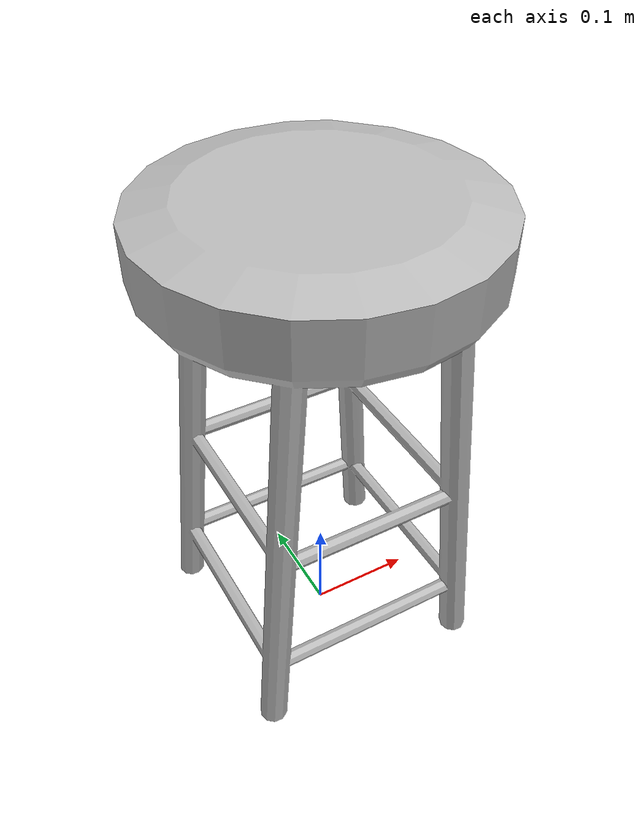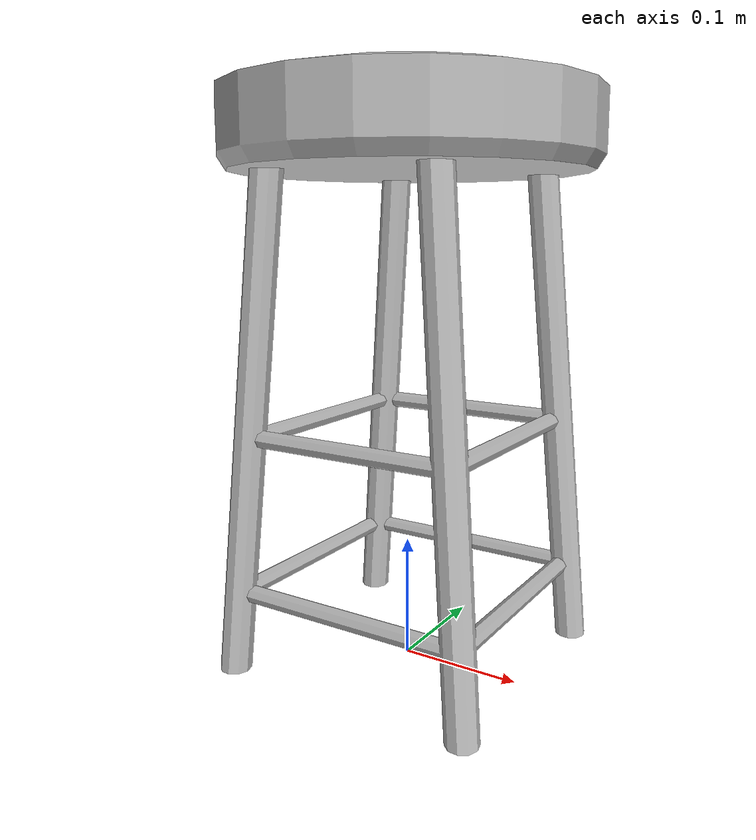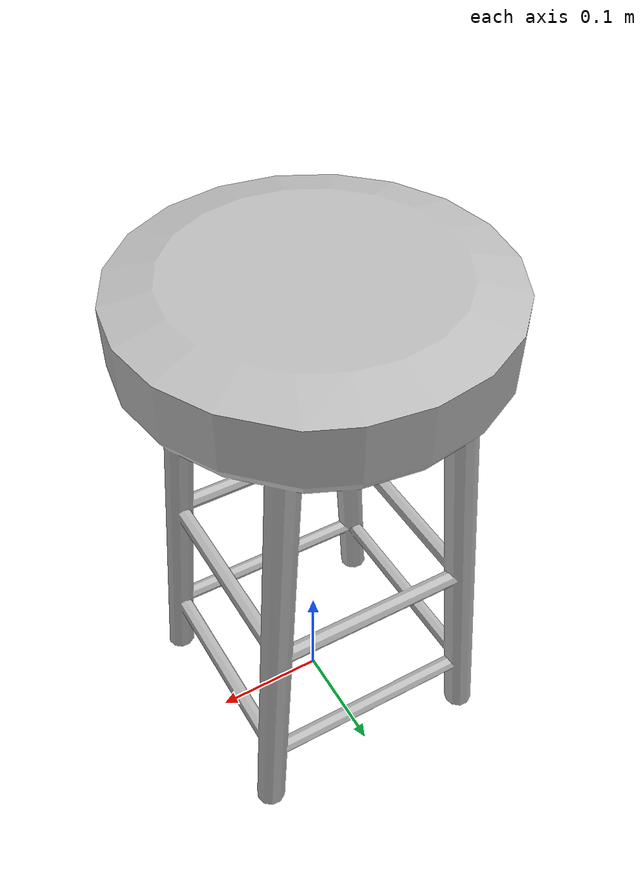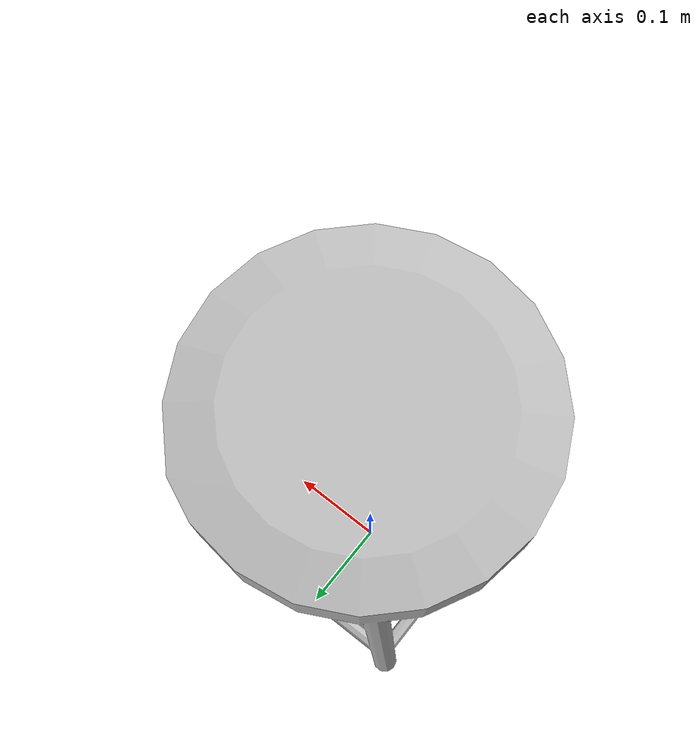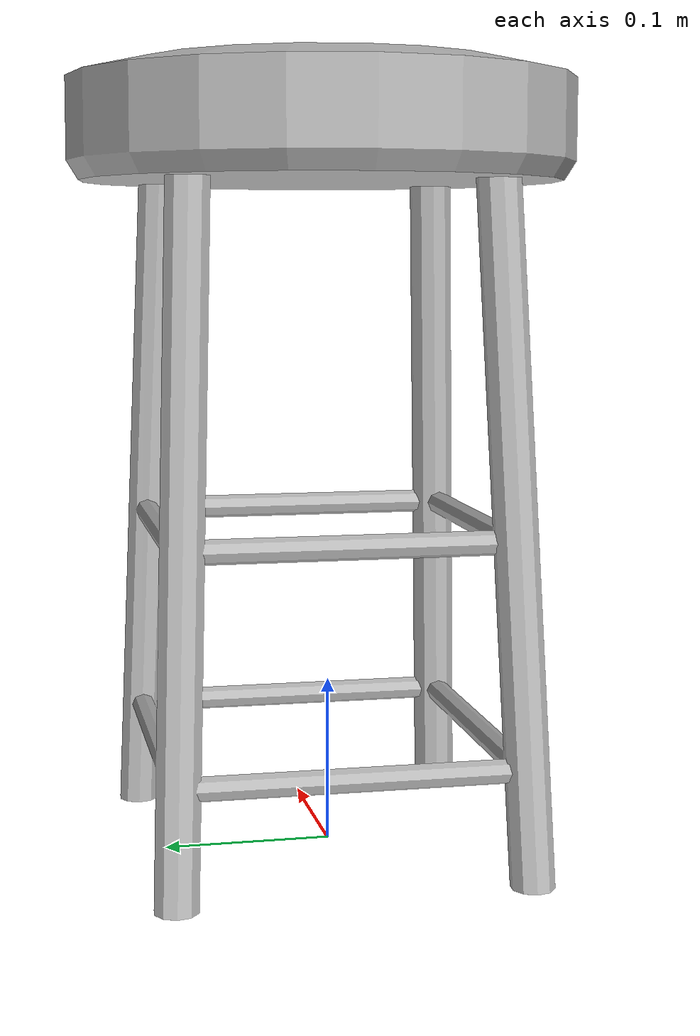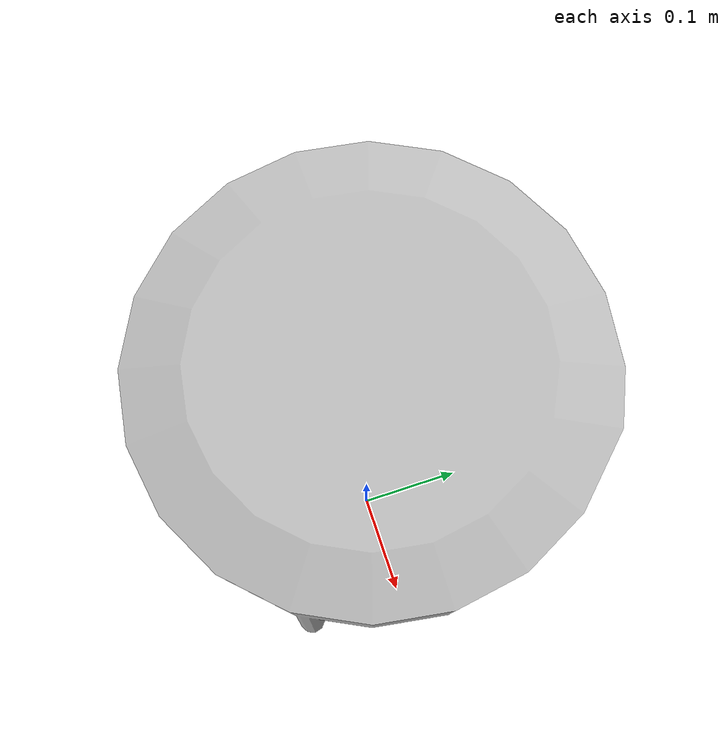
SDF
<?xml version="1.0"?>

<sdf version="1.6">
  <model name="stool">
    <pose>0.0 0.0 0.0 0.0 0.0 0.0</pose>
    <static>true</static>

    <link name="stool_main_link">
      <pose>0.0 0.0 0.0 0.0 0.0 0.0</pose>

      <visual name="visual">
        <pose>0 0 0 0 0 0</pose>
        <geometry>
          <mesh>
            <uri>model://stool/meshes/stool_v3.dae</uri>
          </mesh>
        </geometry>
      </visual>
    </link>

  </model>
</sdf>
